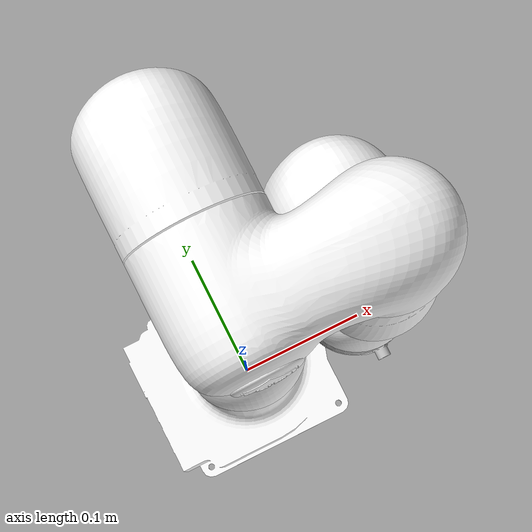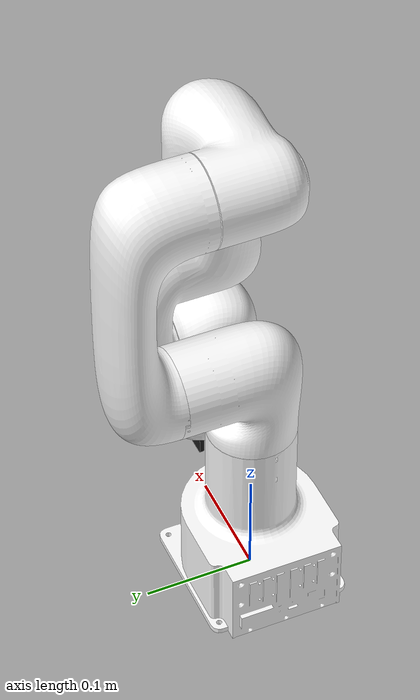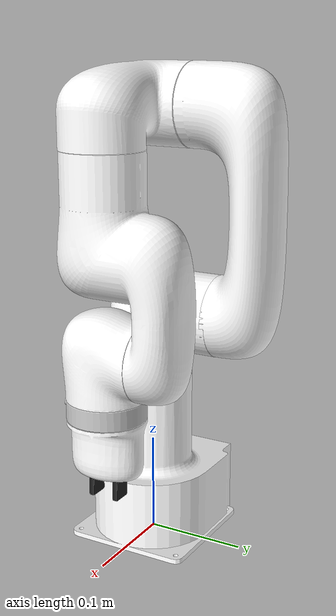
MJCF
<mujoco model="ufactory_lite6">
  <compiler angle="radian" meshdir="assets" autolimits="true"/>

  <option integrator="implicitfast"/>

  <default>
    <default class="lite6">
      <geom type="mesh"/>
      <joint axis="0 0 1" damping="1" armature="0.1"/>
      <position kp="2000" kv="200"/>
      <default class="size1">
        <position forcerange="-50 50"/>
      </default>
      <default class="size2">
        <position forcerange="-32 32"/>
      </default>
      <default class="size3">
        <position forcerange="-20 20"/>
      </default>
      <default class="visual">
        <geom contype="0" conaffinity="0" group="2" material="white"/>
      </default>
      <default class="collision">
        <geom group="3" mass="0" density="0"/>
      </default>
      <site size="0.001" rgba="0.5 0.5 0.5 0.3" group="4"/>
    </default>
  </default>

  <asset>
    <material name="white" rgba="1 1 1 1"/>
    <material name="silver" rgba=".753 .753 .753 1"/>
    <material name="black" rgba=".1 .1 .1 1"/>

    <mesh file="visual/link_base.stl"/>
    <mesh file="visual/link1.stl"/>
    <mesh file="visual/link2.stl"/>
    <mesh file="visual/link3.stl"/>
    <mesh file="visual/link4.stl"/>
    <mesh file="visual/link5.stl"/>
    <mesh file="visual/link6.stl"/>
    <mesh file="visual/gripper_lite_body.stl"/>
    <mesh file="visual/gripper_lite_left_finger_wide.stl"/>
    <mesh file="visual/gripper_lite_right_finger_wide.stl"/>
    <mesh name="link_base_c" file="collision/link_base.stl"/>
    <mesh name="link1_c" file="collision/link1.stl"/>
    <mesh name="link2_c" file="collision/link2.stl"/>
    <mesh name="link3_c" file="collision/link3.stl"/>
    <mesh name="link4_c" file="collision/link4.stl"/>
    <mesh name="link5_c" file="collision/link5.stl"/>
    <mesh name="link6_c" file="collision/link6.stl"/>
    <mesh name="gripper_lite_body_c" file="collision/gripper_lite_body.stl"/>
    <mesh file="collision/gripper_lite_left_finger_wide_base.stl"/>
    <mesh file="collision/gripper_lite_right_finger_wide_base.stl"/>
    <mesh file="collision/gripper_lite_left_finger_wide_tip.stl"/>
    <mesh file="collision/gripper_lite_right_finger_wide_tip.stl"/>
  </asset>

  <worldbody>
    <body name="link_base" childclass="lite6">
      <inertial pos="-0.00829545 3.26357e-05 0.0631195" mass="1.65394" diaginertia="0 0 0"/>
      <geom class="visual" mesh="link_base"/>
      <geom name="link_base_c" class="collision" mesh="link_base_c"/>
      <body name="link1" pos="0 0 0.2435">
        <inertial pos="-0.00036 0.04195 -0.0025" quat="0.608059 0.792349 -0.0438707 0.0228718" mass="1.411"
          diaginertia="0.00145276 0.00135275 0.000853355"/>
        <joint name="joint1" range="-6.28319 6.28319"/>
        <geom class="visual" mesh="link1"/>
        <geom name="link1_c" class="collision" mesh="link1_c"/>
        <body name="link2" quat="-1 1 1 1">
          <inertial pos="0.179 0 0.0584" quat="0.417561 0.571619 0.569585 0.417693" mass="1.34"
            diaginertia="0.00560971 0.0052152 0.00122018"/>
          <joint name="joint2" range="-2.61799 2.61799"/>
          <geom class="visual" mesh="link2"/>
          <geom name="link2_c" class="collision" mesh="link2_c"/>
          <body name="link3" pos="0.2002 0 0" quat="-2.59734e-06 -0.707105 -0.707108 -2.59735e-06">
            <inertial pos="0.072 -0.0357 -0.001" quat="0.128259 0.662963 -0.167256 0.71837" mass="0.953"
              diaginertia="0.0018521 0.00175546 0.000703807"/>
            <joint name="joint3" range="-0.061087 5.23599"/>
            <geom class="visual" mesh="link3"/>
            <geom name="link3_c" class="collision" mesh="link3_c"/>
            <body name="link4" pos="0.087 -0.22761 0" quat="0.707105 0.707108 0 0">
              <inertial pos="-0.002 -0.0285 -0.0813" quat="0.975248 0.22109 0.00203498 -0.00262178" mass="1.284"
                diaginertia="0.00370503 0.00349091 0.00109586"/>
              <joint name="joint4" range="-6.28319 6.28319"/>
              <geom class="visual" mesh="link4"/>
              <geom name="link4_c" class="collision" mesh="link4_c"/>
              <body name="link5" quat="1 1 0 0">
                <inertial pos="0 0.01 0.0019" quat="0.71423 0.696388 -0.0531933 0.0456997" mass="0.804"
                  diaginertia="0.000567553 0.000529266 0.000507681"/>
                <joint name="joint5" range="-2.1642 2.1642"/>
                <geom class="visual" mesh="link5"/>
                <geom name="link5_c" class="collision" mesh="link5_c"/>
                <body name="link6" pos="0 0.0625 0" quat="1 -1 0 0">
                  <inertial pos="0 -0.00194 -0.0102" quat="-0.0376023 0.704057 0.0446838 0.707738" mass="0.13"
                    diaginertia="0.000148148 8.57757e-05 7.71412e-05"/>
                  <joint name="joint6" range="-6.28319 6.28319"/>
                  <geom class="visual" mesh="link6" material="silver"/>
                  <geom name="link6_c" class="collision" mesh="link6_c"/>
                  <site name="attachment_site"/>
                  <body name="gripper_body" pos="0 0 0" quat="1 0 0 0">
                    <inertial pos="0.0 0.0 0.026" quat="1 0 0 0" mass="0.26"
                      diaginertia="0.00016117 0.000118 0.00014455"/>
                    <geom class="visual" mesh="gripper_lite_body" material="white"/>
                    <geom name="gripper_lite_body_c" class="collision" mesh="gripper_lite_body_c"/>
                    <!-- Finger and base separated to avoid convex hull preventing gripping -->
                    <body name="gripper_left_finger" pos="0 0 0.054" quat="1 0 0 0">
                      <inertial pos="0.0 -0.01 0.01" quat="1 0 0 0" mass="0.024"
                        diaginertia="1.961e-6 2.274e-6 1.238e-6"/>
                      <joint name="gripper_left_finger" pos="0 0 0" axis="0 1 0" type="slide" limited="true"
                        range="-0.0081 -1e-5" frictionloss="0.4"/>
                      <geom mesh="gripper_lite_left_finger_wide" class="visual" material="black"/>
                      <geom name="gripper_left_finger_base" class="collision" mesh="gripper_lite_left_finger_wide_base"
                        material="black" condim="1" solimp="2 1 0.01" solref="0.01 1" friction="6 0.5 0.1"/>
                      <geom name="gripper_left_finger" class="collision" mesh="gripper_lite_left_finger_wide_tip"
                        material="black" condim="4" solimp="2 1 0.01" solref="0.01 1" friction="6 0.5 0.1"/>
                    </body>
                    <body name="gripper_right_finger" pos="0 0 0.054" quat="1 0 0 0">
                      <inertial pos="0.0 0.01 0.01" quat="1 0 0 0" mass="0.024"
                        diaginertia="1.961e-6 2.274e-6 1.238e-6"/>
                      <joint name="gripper_right_finger" pos="0 0 0" axis="0 1 0" type="slide" limited="true"
                        range="1e-5 0.0081" frictionloss="0.4"/>
                      <geom mesh="gripper_lite_right_finger_wide" class="visual" material="black"/>
                      <geom name="gripper_right_finger_base" class="collision"
                        mesh="gripper_lite_right_finger_wide_base" material="black" condim="1" solimp="2 1 0.01"
                        solref="0.01 1" friction="5 0.5 0.1"/>
                      <geom name="gripper_right_finger" class="collision" mesh="gripper_lite_right_finger_wide_tip"
                        material="black" condim="4" solimp="2 1 0.01" solref="0.01 1" friction="5 0.5 0.1"/>
                    </body>
                    <!-- End effector reference point is in the centre at the tip of the grippers -->
                    <site name="end_effector" pos="0 0 0.0811"/>
                  </body>
                </body>
              </body>
            </body>
          </body>
        </body>
      </body>
    </body>
  </worldbody>

  <actuator>
    <position joint="joint1" class="size1" ctrlrange="-6.28319 6.28319"/>
    <position joint="joint2" class="size1" ctrlrange="-2.61799 2.61799"/>
    <position joint="joint3" class="size2" ctrlrange="-0.061087 5.23599"/>
    <position joint="joint4" class="size2" ctrlrange="-6.28319 6.28319"/>
    <position joint="joint5" class="size2" ctrlrange="-2.1642 2.1642"/>
    <position joint="joint6" class="size3" ctrlrange="-6.28319 6.28319"/>
    <motor name="gripper" joint="gripper_left_finger" forcerange="-10 10" ctrlrange="-10 10"/>
  </actuator>

  <equality>
    <joint joint1="gripper_left_finger" joint2="gripper_right_finger" polycoef="0 -1 0 0 0"/>
  </equality>

  <keyframe>
    <key name="home" qpos="0 0 1.57 0 1.57 0 0 0" ctrl="0 0 1.57 0 1.57 0 0"/>
  </keyframe>
</mujoco>
